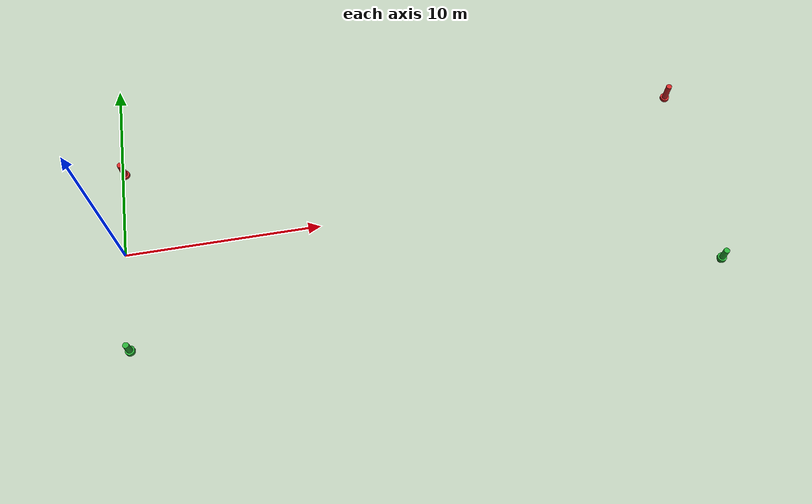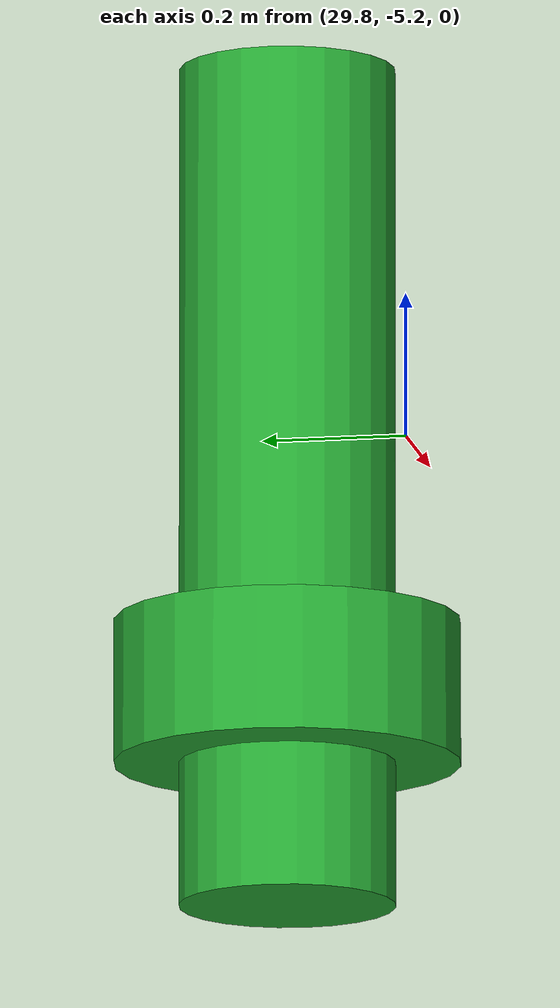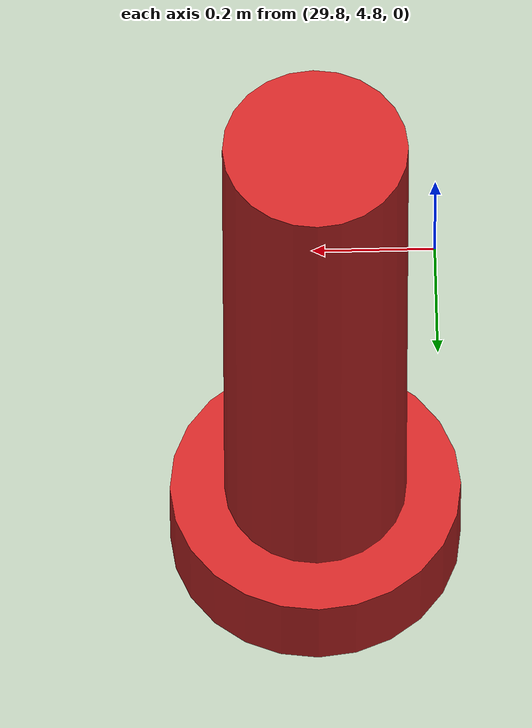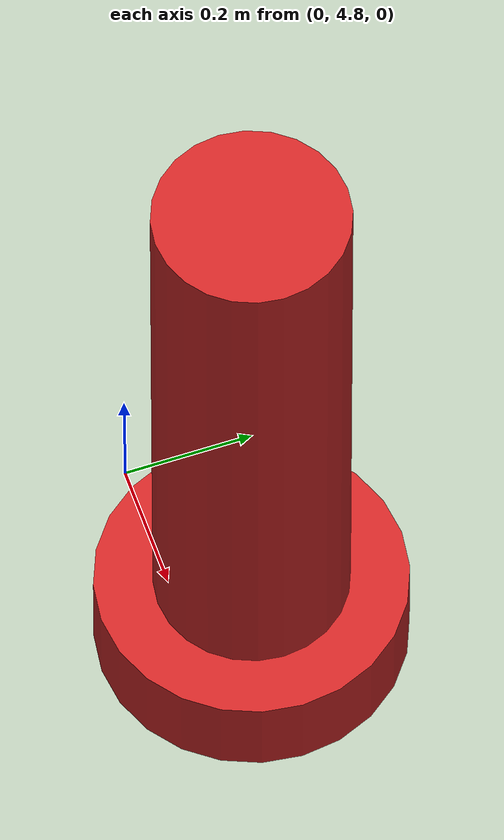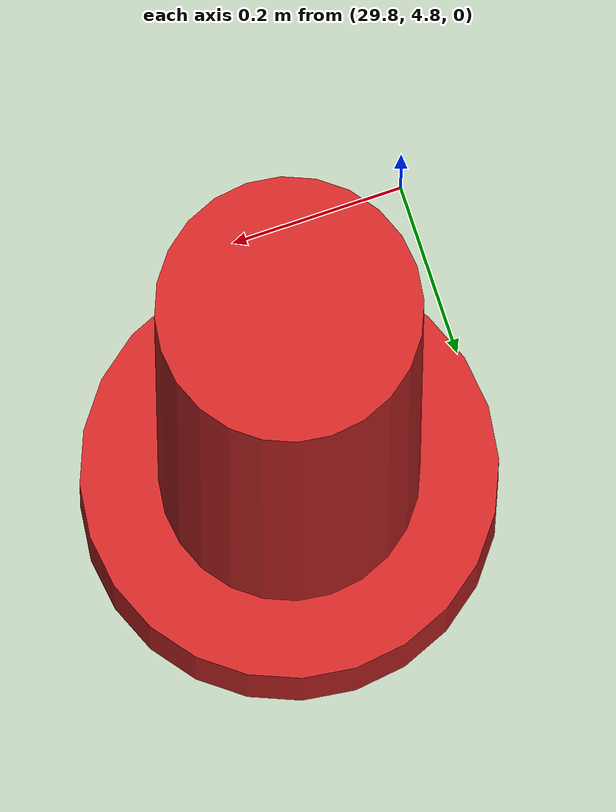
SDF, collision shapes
<?xml version="1.0"?>
<!-- Model for the RobotX navigation challenge, containing 4 buoys -->
<sdf version="1.7">
  <model name="robotx_navigation_challenge">
      <!-- Start -->
      <!-- Red naun -->
      <include>
        <name>gate_start_red</name>
        <pose>0 5 0 0 0 0 </pose>
        <uri>model://surmark950410</uri>
      </include>
      <!-- Green can -->
      <include>
        <name>gate_start_green</name>
        <pose>0 -5 0 0 0 0 </pose>
        <uri>model://surmark950400</uri>
      </include>

      <!-- End -->
      <!-- Red naun -->
      <include>
        <name>gate_end_red</name>
        <pose>30 5 0 0 0 0 </pose>
        <uri>model://surmark950410</uri>
      </include>
      <!-- Green can -->
      <include>
        <name>gate_end_green</name>
        <pose>30 -5 0 0 0 0 </pose>
        <uri>model://surmark950400</uri>
      </include>
  </model>
</sdf>

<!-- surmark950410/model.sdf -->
<sdf version="1.7">
  <model name="surmark950410">
    <link name="link">
      <inertial>
        <pose>0 0 -2 0 0 0</pose>
        <!-- Mass determined based on buoyancy geometry so object
             floats at mid-point of sphere -->
        <mass>25</mass>
        <!-- Mark only - based on cylinder -->
        <inertia>
          <ixx>1.0</ixx>
          <ixy>0</ixy>
          <ixz>0</ixz>
          <iyy>1.0</iyy>
          <iyz>0</iyz>
          <izz>0.1</izz>
        </inertia>
      </inertial>
      <collision name="collision_inner">
        <pose>0 0 -0.01 0 0 0</pose>
        <geometry>
          <cylinder>
            <radius>0.15</radius>
            <length>1.26</length>
          </cylinder>
        </geometry>
      </collision>
      <collision name="collision_outer">
        <pose>0 0 -0.48 0 0 0</pose>
        <geometry>
          <cylinder>
            <radius>0.24</radius>
            <length>0.15</length>
          </cylinder>
        </geometry>
      </collision>
      <visual name="visual">
        <geometry>
	        <mesh><uri>model://surmark950410/mesh/surmark950410.dae</uri></mesh>
        </geometry>
        <material>
          <script>
            <uri>model://surmark950410/materials/scripts/surmark950410.material</uri>
            <name>surmark950410/Red</name>
          </script>
        </material>
      </visual>
    </link>

    <plugin name="BuoyancyPlugin" filename="libbuoyancy_gazebo_plugin.so">
      <wave_model>ocean_waves</wave_model>
      <fluid_density>1000</fluid_density>
      <fluid_level>0.0</fluid_level>
      <linear_drag>25.0</linear_drag>
      <angular_drag>2.0</angular_drag>
      <buoyancy name="buoyancy_sphere">
        <link_name>link</link_name>
        <pose>0 0 -0.48 0 0 0</pose>
        <geometry>
          <sphere>
            <radius>0.23</radius>
          </sphere>
        </geometry>
      </buoyancy>
    </plugin>

  </model>
</sdf>

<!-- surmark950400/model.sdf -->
<sdf version="1.7">
  <model name="surmark950400">
    <link name="link">
      <inertial>
        <pose>0 0 -2 0 0 0</pose>
        <!-- Mass determined based on buoyancy geometry so object
             floats at mid-point of sphere -->
        <mass>25</mass>
        <!-- Mark only - based on cylinder -->
        <inertia>
          <ixx>1.0</ixx>
          <ixy>0</ixy>
          <ixz>0</ixz>
          <iyy>1.0</iyy>
          <iyz>0</iyz>
          <izz>0.1</izz>
        </inertia>
      </inertial>
      <collision name="collision_inner">
        <pose>0 0 -0.02 0 0 0</pose>
        <geometry>
          <cylinder>
            <radius>0.15</radius>
            <length>1.18</length>
          </cylinder>
        </geometry>
      </collision>
      <collision name="collision_outer">
        <pose>0 0 -0.31 0 0 0</pose>
        <geometry>
          <cylinder>
            <radius>0.24</radius>
            <length>0.2</length>
          </cylinder>
        </geometry>
      </collision>
      <visual name="visual">
        <geometry>
	        <mesh><uri>model://surmark950400/mesh/surmark950400.dae</uri></mesh>
        </geometry>
        <material>
          <script>
            <uri>model://surmark950400/materials/scripts/surmark950400.material</uri>
            <name>surmark950400/Green</name>
          </script>
        </material>
      </visual>
    </link>

    <plugin name="BuoyancyPlugin" filename="libbuoyancy_gazebo_plugin.so">
      <wave_model>ocean_waves</wave_model>
      <fluid_density>1000</fluid_density>
      <fluid_level>0.0</fluid_level>
      <linear_drag>25.0</linear_drag>
      <angular_drag>2.0</angular_drag>
      <buoyancy name="buoyancy_sphere">
        <link_name>link</link_name>
        <pose>0 0 -0.31 0 0 0</pose>
        <geometry>
          <sphere>
            <radius>0.23</radius>
          </sphere>
        </geometry>
      </buoyancy>
    </plugin>

  </model>
</sdf>
